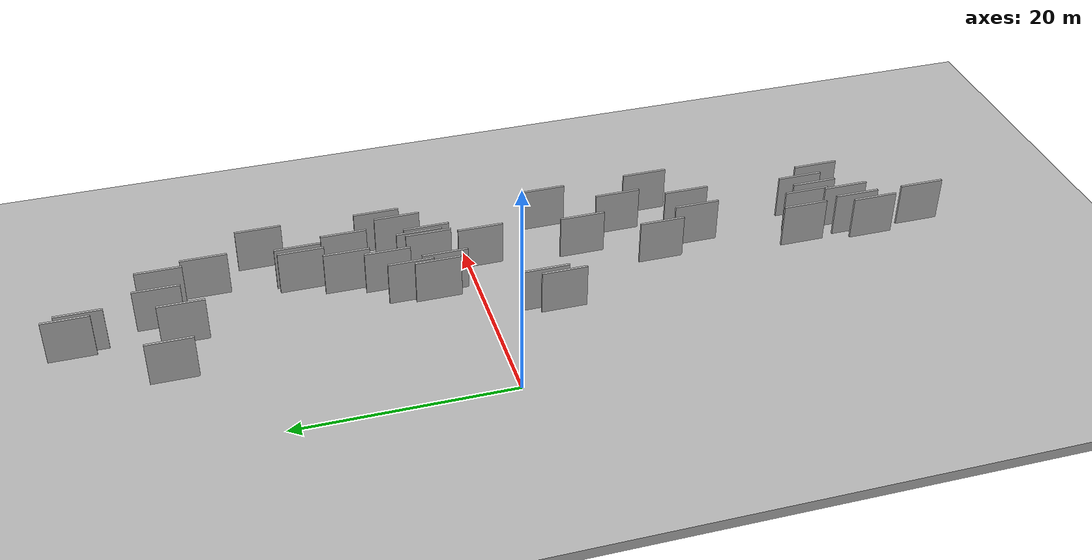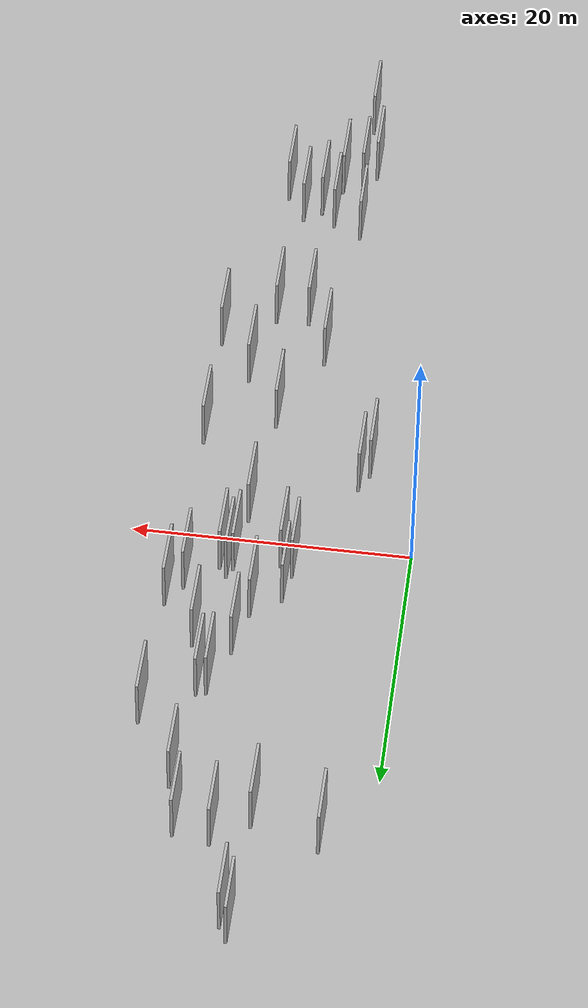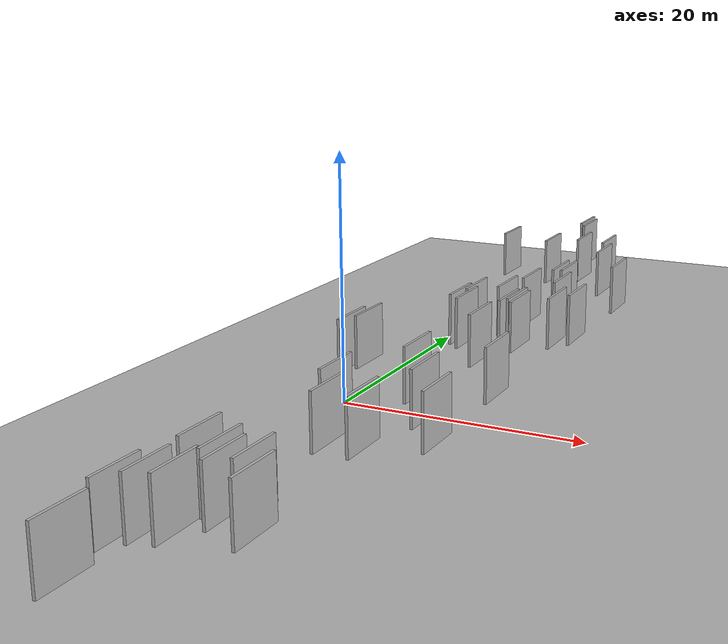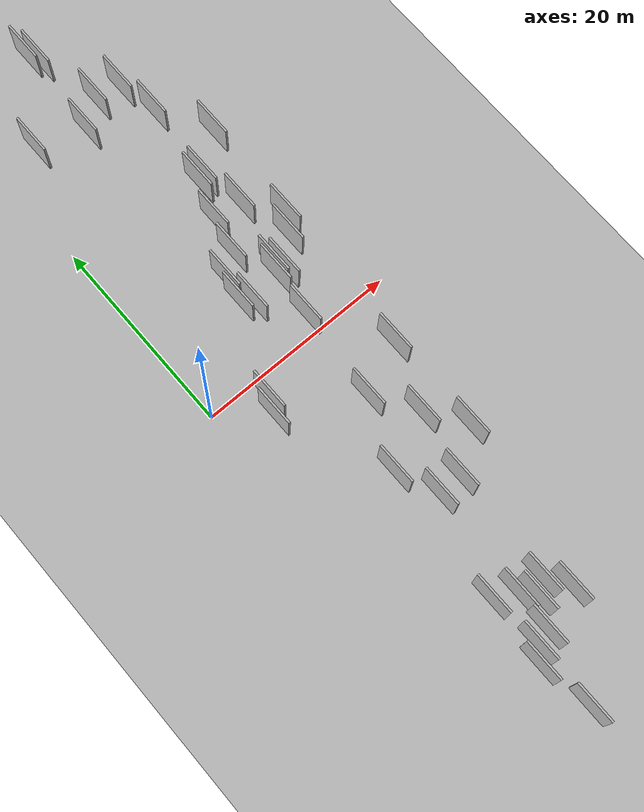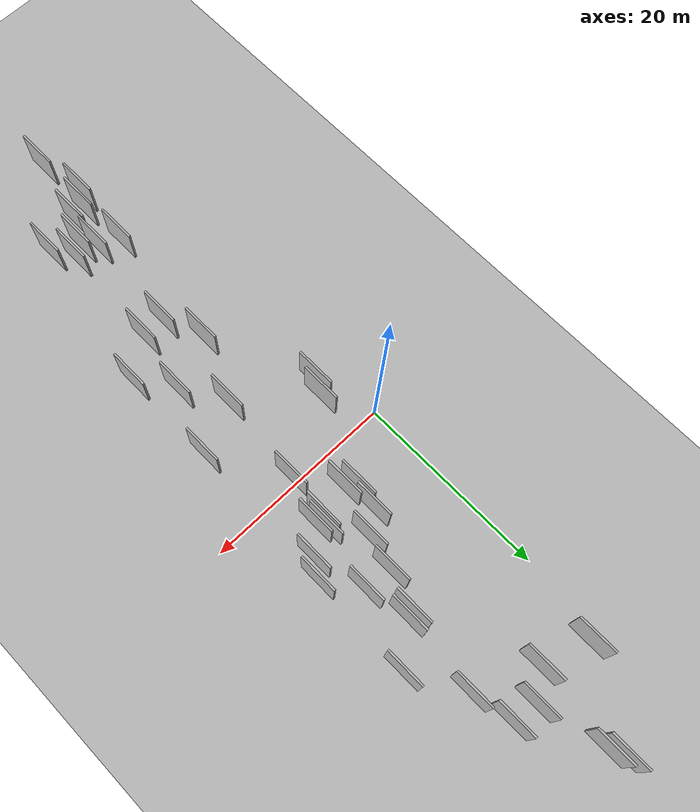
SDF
<?xml version="1.0" encoding="utf-8"?>

<sdf version="1.6">

   <world name="default">

      <gui fullscreen="0">

         <camera name="user_camera">

            <pose>-15 0 4.57585 0 0 0</pose>

            <view_controller>orbit</view_controller>

         </camera>

      </gui>

      <scene>

         <sky>

           <clouds>

             <speed>12</speed>

           </clouds>

         </sky>

         <ambient>0.4 0.4 0.4 1</ambient>

         <background>0.7 0.7 0.7 1</background>

         <shadows>1</shadows>

      </scene>

      <gravity>0 0 -9.8066</gravity>

      <magnetic_field>6e-06 2.3e-05 -4.2e-05</magnetic_field>

      <physics default="0" name="default_physics" type="ode">

         <ode>

            <solver>

               <type>quick</type>

               <iters>10</iters>

               <sor>1.0</sor>

               <use_dynamic_moi_rescaling>0</use_dynamic_moi_rescaling>

            </solver>

            <constraints>

               <cfm>0</cfm>

               <erp>0.2</erp>

               <contact_max_correcting_vel>100</contact_max_correcting_vel>

               <contact_surface_layer>0.001</contact_surface_layer>

            </constraints>

         </ode>

         <max_step_size>0.004</max_step_size>

         <real_time_factor>1</real_time_factor>

         <real_time_update_rate>250</real_time_update_rate>

      </physics>

      <light name="sun" type="directional">

         <cast_shadows>1</cast_shadows>

         <pose>0 0 10 0 0 0</pose>

         <diffuse>0.8 0.8 0.8 1</diffuse>

         <specular>0.2 0.2 0.2 1</specular>

         <attenuation>

            <range>1000</range>

            <constant>0.9</constant>

            <linear>0.01</linear>

            <quadratic>0.001</quadratic>

         </attenuation>

         <direction>-0.5 0.1 -0.9</direction>

      </light>

      <include>

         <name>ground_plane_1</name>

         <uri>model://HANNAS_ground_plane</uri>

         <pose>0 0 0  0 0 0</pose>

      </include>

      <include>

         <name>ground_plane_2</name>

         <uri>model://HANNAS_ground_plane</uri>

         <pose>100 0 0  0 0 0</pose>

      </include>

      <model name="HANNAS_wall_1">

         <static>1</static>

         <pose frame="">12.6795 27.9832 5.0 0.000000 0.000000 1.570796</pose>

         <link name="link">

            <pose frame="">0 0 2.00 0 0 0</pose>

            <collision name="collision">

               <geometry>

                  <box>

                     <size>4.00 0.2 4.00</size>

                  </box>

               </geometry>

               <max_contacts>10</max_contacts>

               <surface>

                  <contact>

                     <ode/>

                  </contact>

                  <bounce/>

                  <friction>

                     <torsional>

                        <ode/>

                     </torsional>

                     <ode/>

                  </friction>

               </surface>

            </collision>

            <visual name="visual">

               <cast_shadows>0</cast_shadows>

               <geometry>

                  <box>

                     <size>4.00 0.2 4.00</size>

                  </box>

               </geometry>

               <material>

                  <script>

                     <uri>model://HANNAS_wall/materials/scripts</uri>

                     <uri>model://HANNAS_wall/materials/textures</uri>

                     <name>vrc/HANNAS_wall</name>

                  </script>

               </material>

            </visual>

            <self_collide>0</self_collide>

            <enable_wind>0</enable_wind>

            <kinematic>0</kinematic>

         </link>

      </model>

      <model name="HANNAS_wall_2">

         <static>1</static>

         <pose frame="">10.1720 28.4027 5.0 0.000000 0.000000 1.570796</pose>

         <link name="link">

            <pose frame="">0 0 2.00 0 0 0</pose>

            <collision name="collision">

               <geometry>

                  <box>

                     <size>4.00 0.2 4.00</size>

                  </box>

               </geometry>

               <max_contacts>10</max_contacts>

               <surface>

                  <contact>

                     <ode/>

                  </contact>

                  <bounce/>

                  <friction>

                     <torsional>

                        <ode/>

                     </torsional>

                     <ode/>

                  </friction>

               </surface>

            </collision>

            <visual name="visual">

               <cast_shadows>0</cast_shadows>

               <geometry>

                  <box>

                     <size>4.00 0.2 4.00</size>

                  </box>

               </geometry>

               <material>

                  <script>

                     <uri>model://HANNAS_wall/materials/scripts</uri>

                     <uri>model://HANNAS_wall/materials/textures</uri>

                     <name>vrc/HANNAS_wall</name>

                  </script>

               </material>

            </visual>

            <self_collide>0</self_collide>

            <enable_wind>0</enable_wind>

            <kinematic>0</kinematic>

         </link>

      </model>

      <model name="HANNAS_wall_3">

         <static>1</static>

         <pose frame="">9.5162 -18.8121 5.0 0.000000 0.000000 1.570796</pose>

         <link name="link">

            <pose frame="">0 0 2.00 0 0 0</pose>

            <collision name="collision">

               <geometry>

                  <box>

                     <size>4.00 0.2 4.00</size>

                  </box>

               </geometry>

               <max_contacts>10</max_contacts>

               <surface>

                  <contact>

                     <ode/>

                  </contact>

                  <bounce/>

                  <friction>

                     <torsional>

                        <ode/>

                     </torsional>

                     <ode/>

                  </friction>

               </surface>

            </collision>

            <visual name="visual">

               <cast_shadows>0</cast_shadows>

               <geometry>

                  <box>

                     <size>4.00 0.2 4.00</size>

                  </box>

               </geometry>

               <material>

                  <script>

                     <uri>model://HANNAS_wall/materials/scripts</uri>

                     <uri>model://HANNAS_wall/materials/textures</uri>

                     <name>vrc/HANNAS_wall</name>

                  </script>

               </material>

            </visual>

            <self_collide>0</self_collide>

            <enable_wind>0</enable_wind>

            <kinematic>0</kinematic>

         </link>

      </model>

      <model name="HANNAS_wall_4">

         <static>1</static>

         <pose frame="">11.8128 5.0187 5.0 0.000000 0.000000 1.570796</pose>

         <link name="link">

            <pose frame="">0 0 2.00 0 0 0</pose>

            <collision name="collision">

               <geometry>

                  <box>

                     <size>4.00 0.2 4.00</size>

                  </box>

               </geometry>

               <max_contacts>10</max_contacts>

               <surface>

                  <contact>

                     <ode/>

                  </contact>

                  <bounce/>

                  <friction>

                     <torsional>

                        <ode/>

                     </torsional>

                     <ode/>

                  </friction>

               </surface>

            </collision>

            <visual name="visual">

               <cast_shadows>0</cast_shadows>

               <geometry>

                  <box>

                     <size>4.00 0.2 4.00</size>

                  </box>

               </geometry>

               <material>

                  <script>

                     <uri>model://HANNAS_wall/materials/scripts</uri>

                     <uri>model://HANNAS_wall/materials/textures</uri>

                     <name>vrc/HANNAS_wall</name>

                  </script>

               </material>

            </visual>

            <self_collide>0</self_collide>

            <enable_wind>0</enable_wind>

            <kinematic>0</kinematic>

         </link>

      </model>

      <model name="HANNAS_wall_5">

         <static>1</static>

         <pose frame="">10.5762 -8.5351 5.0 0.000000 0.000000 1.570796</pose>

         <link name="link">

            <pose frame="">0 0 2.00 0 0 0</pose>

            <collision name="collision">

               <geometry>

                  <box>

                     <size>4.00 0.2 4.00</size>

                  </box>

               </geometry>

               <max_contacts>10</max_contacts>

               <surface>

                  <contact>

                     <ode/>

                  </contact>

                  <bounce/>

                  <friction>

                     <torsional>

                        <ode/>

                     </torsional>

                     <ode/>

                  </friction>

               </surface>

            </collision>

            <visual name="visual">

               <cast_shadows>0</cast_shadows>

               <geometry>

                  <box>

                     <size>4.00 0.2 4.00</size>

                  </box>

               </geometry>

               <material>

                  <script>

                     <uri>model://HANNAS_wall/materials/scripts</uri>

                     <uri>model://HANNAS_wall/materials/textures</uri>

                     <name>vrc/HANNAS_wall</name>

                  </script>

               </material>

            </visual>

            <self_collide>0</self_collide>

            <enable_wind>0</enable_wind>

            <kinematic>0</kinematic>

         </link>

      </model>

      <model name="HANNAS_wall_6">

         <static>1</static>

         <pose frame="">8.8865 -29.0302 5.0 0.000000 0.000000 1.570796</pose>

         <link name="link">

            <pose frame="">0 0 2.00 0 0 0</pose>

            <collision name="collision">

               <geometry>

                  <box>

                     <size>4.00 0.2 4.00</size>

                  </box>

               </geometry>

               <max_contacts>10</max_contacts>

               <surface>

                  <contact>

                     <ode/>

                  </contact>

                  <bounce/>

                  <friction>

                     <torsional>

                        <ode/>

                     </torsional>

                     <ode/>

                  </friction>

               </surface>

            </collision>

            <visual name="visual">

               <cast_shadows>0</cast_shadows>

               <geometry>

                  <box>

                     <size>4.00 0.2 4.00</size>

                  </box>

               </geometry>

               <material>

                  <script>

                     <uri>model://HANNAS_wall/materials/scripts</uri>

                     <uri>model://HANNAS_wall/materials/textures</uri>

                     <name>vrc/HANNAS_wall</name>

                  </script>

               </material>

            </visual>

            <self_collide>0</self_collide>

            <enable_wind>0</enable_wind>

            <kinematic>0</kinematic>

         </link>

      </model>

      <model name="HANNAS_wall_7">

         <static>1</static>

         <pose frame="">7.0905 -39.4141 5.0 0.000000 0.000000 1.570796</pose>

         <link name="link">

            <pose frame="">0 0 2.00 0 0 0</pose>

            <collision name="collision">

               <geometry>

                  <box>

                     <size>4.00 0.2 4.00</size>

                  </box>

               </geometry>

               <max_contacts>10</max_contacts>

               <surface>

                  <contact>

                     <ode/>

                  </contact>

                  <bounce/>

                  <friction>

                     <torsional>

                        <ode/>

                     </torsional>

                     <ode/>

                  </friction>

               </surface>

            </collision>

            <visual name="visual">

               <cast_shadows>0</cast_shadows>

               <geometry>

                  <box>

                     <size>4.00 0.2 4.00</size>

                  </box>

               </geometry>

               <material>

                  <script>

                     <uri>model://HANNAS_wall/materials/scripts</uri>

                     <uri>model://HANNAS_wall/materials/textures</uri>

                     <name>vrc/HANNAS_wall</name>

                  </script>

               </material>

            </visual>

            <self_collide>0</self_collide>

            <enable_wind>0</enable_wind>

            <kinematic>0</kinematic>

         </link>

      </model>

      <model name="HANNAS_wall_8">

         <static>1</static>

         <pose frame="">16.0578 8.7407 5.0 0.000000 0.000000 1.570796</pose>

         <link name="link">

            <pose frame="">0 0 2.00 0 0 0</pose>

            <collision name="collision">

               <geometry>

                  <box>

                     <size>4.00 0.2 4.00</size>

                  </box>

               </geometry>

               <max_contacts>10</max_contacts>

               <surface>

                  <contact>

                     <ode/>

                  </contact>

                  <bounce/>

                  <friction>

                     <torsional>

                        <ode/>

                     </torsional>

                     <ode/>

                  </friction>

               </surface>

            </collision>

            <visual name="visual">

               <cast_shadows>0</cast_shadows>

               <geometry>

                  <box>

                     <size>4.00 0.2 4.00</size>

                  </box>

               </geometry>

               <material>

                  <script>

                     <uri>model://HANNAS_wall/materials/scripts</uri>

                     <uri>model://HANNAS_wall/materials/textures</uri>

                     <name>vrc/HANNAS_wall</name>

                  </script>

               </material>

            </visual>

            <self_collide>0</self_collide>

            <enable_wind>0</enable_wind>

            <kinematic>0</kinematic>

         </link>

      </model>

      <model name="HANNAS_wall_9">

         <static>1</static>

         <pose frame="">15.4858 -6.3340 5.0 0.000000 0.000000 1.570796</pose>

         <link name="link">

            <pose frame="">0 0 2.00 0 0 0</pose>

            <collision name="collision">

               <geometry>

                  <box>

                     <size>4.00 0.2 4.00</size>

                  </box>

               </geometry>

               <max_contacts>10</max_contacts>

               <surface>

                  <contact>

                     <ode/>

                  </contact>

                  <bounce/>

                  <friction>

                     <torsional>

                        <ode/>

                     </torsional>

                     <ode/>

                  </friction>

               </surface>

            </collision>

            <visual name="visual">

               <cast_shadows>0</cast_shadows>

               <geometry>

                  <box>

                     <size>4.00 0.2 4.00</size>

                  </box>

               </geometry>

               <material>

                  <script>

                     <uri>model://HANNAS_wall/materials/scripts</uri>

                     <uri>model://HANNAS_wall/materials/textures</uri>

                     <name>vrc/HANNAS_wall</name>

                  </script>

               </material>

            </visual>

            <self_collide>0</self_collide>

            <enable_wind>0</enable_wind>

            <kinematic>0</kinematic>

         </link>

      </model>

      <model name="HANNAS_wall_10">

         <static>1</static>

         <pose frame="">8.6025 4.3147 5.0 0.000000 0.000000 1.570796</pose>

         <link name="link">

            <pose frame="">0 0 2.00 0 0 0</pose>

            <collision name="collision">

               <geometry>

                  <box>

                     <size>4.00 0.2 4.00</size>

                  </box>

               </geometry>

               <max_contacts>10</max_contacts>

               <surface>

                  <contact>

                     <ode/>

                  </contact>

                  <bounce/>

                  <friction>

                     <torsional>

                        <ode/>

                     </torsional>

                     <ode/>

                  </friction>

               </surface>

            </collision>

            <visual name="visual">

               <cast_shadows>0</cast_shadows>

               <geometry>

                  <box>

                     <size>4.00 0.2 4.00</size>

                  </box>

               </geometry>

               <material>

                  <script>

                     <uri>model://HANNAS_wall/materials/scripts</uri>

                     <uri>model://HANNAS_wall/materials/textures</uri>

                     <name>vrc/HANNAS_wall</name>

                  </script>

               </material>

            </visual>

            <self_collide>0</self_collide>

            <enable_wind>0</enable_wind>

            <kinematic>0</kinematic>

         </link>

      </model>

      <model name="HANNAS_wall_11">

         <static>1</static>

         <pose frame="">11.3476 0.5023 5.0 0.000000 0.000000 1.570796</pose>

         <link name="link">

            <pose frame="">0 0 2.00 0 0 0</pose>

            <collision name="collision">

               <geometry>

                  <box>

                     <size>4.00 0.2 4.00</size>

                  </box>

               </geometry>

               <max_contacts>10</max_contacts>

               <surface>

                  <contact>

                     <ode/>

                  </contact>

                  <bounce/>

                  <friction>

                     <torsional>

                        <ode/>

                     </torsional>

                     <ode/>

                  </friction>

               </surface>

            </collision>

            <visual name="visual">

               <cast_shadows>0</cast_shadows>

               <geometry>

                  <box>

                     <size>4.00 0.2 4.00</size>

                  </box>

               </geometry>

               <material>

                  <script>

                     <uri>model://HANNAS_wall/materials/scripts</uri>

                     <uri>model://HANNAS_wall/materials/textures</uri>

                     <name>vrc/HANNAS_wall</name>

                  </script>

               </material>

            </visual>

            <self_collide>0</self_collide>

            <enable_wind>0</enable_wind>

            <kinematic>0</kinematic>

         </link>

      </model>

      <model name="HANNAS_wall_12">

         <static>1</static>

         <pose frame="">11.2209 -29.3743 5.0 0.000000 0.000000 1.570796</pose>

         <link name="link">

            <pose frame="">0 0 2.00 0 0 0</pose>

            <collision name="collision">

               <geometry>

                  <box>

                     <size>4.00 0.2 4.00</size>

                  </box>

               </geometry>

               <max_contacts>10</max_contacts>

               <surface>

                  <contact>

                     <ode/>

                  </contact>

                  <bounce/>

                  <friction>

                     <torsional>

                        <ode/>

                     </torsional>

                     <ode/>

                  </friction>

               </surface>

            </collision>

            <visual name="visual">

               <cast_shadows>0</cast_shadows>

               <geometry>

                  <box>

                     <size>4.00 0.2 4.00</size>

                  </box>

               </geometry>

               <material>

                  <script>

                     <uri>model://HANNAS_wall/materials/scripts</uri>

                     <uri>model://HANNAS_wall/materials/textures</uri>

                     <name>vrc/HANNAS_wall</name>

                  </script>

               </material>

            </visual>

            <self_collide>0</self_collide>

            <enable_wind>0</enable_wind>

            <kinematic>0</kinematic>

         </link>

      </model>

      <model name="HANNAS_wall_13">

         <static>1</static>

         <pose frame="">13.6624 12.0915 5.0 0.000000 0.000000 1.570796</pose>

         <link name="link">

            <pose frame="">0 0 2.00 0 0 0</pose>

            <collision name="collision">

               <geometry>

                  <box>

                     <size>4.00 0.2 4.00</size>

                  </box>

               </geometry>

               <max_contacts>10</max_contacts>

               <surface>

                  <contact>

                     <ode/>

                  </contact>

                  <bounce/>

                  <friction>

                     <torsional>

                        <ode/>

                     </torsional>

                     <ode/>

                  </friction>

               </surface>

            </collision>

            <visual name="visual">

               <cast_shadows>0</cast_shadows>

               <geometry>

                  <box>

                     <size>4.00 0.2 4.00</size>

                  </box>

               </geometry>

               <material>

                  <script>

                     <uri>model://HANNAS_wall/materials/scripts</uri>

                     <uri>model://HANNAS_wall/materials/textures</uri>

                     <name>vrc/HANNAS_wall</name>

                  </script>

               </material>

            </visual>

            <self_collide>0</self_collide>

            <enable_wind>0</enable_wind>

            <kinematic>0</kinematic>

         </link>

      </model>

      <model name="HANNAS_wall_14">

         <static>1</static>

         <pose frame="">7.9153 -14.9923 5.0 0.000000 0.000000 1.570796</pose>

         <link name="link">

            <pose frame="">0 0 2.00 0 0 0</pose>

            <collision name="collision">

               <geometry>

                  <box>

                     <size>4.00 0.2 4.00</size>

                  </box>

               </geometry>

               <max_contacts>10</max_contacts>

               <surface>

                  <contact>

                     <ode/>

                  </contact>

                  <bounce/>

                  <friction>

                     <torsional>

                        <ode/>

                     </torsional>

                     <ode/>

                  </friction>

               </surface>

            </collision>

            <visual name="visual">

               <cast_shadows>0</cast_shadows>

               <geometry>

                  <box>

                     <size>4.00 0.2 4.00</size>

                  </box>

               </geometry>

               <material>

                  <script>

                     <uri>model://HANNAS_wall/materials/scripts</uri>

                     <uri>model://HANNAS_wall/materials/textures</uri>

                     <name>vrc/HANNAS_wall</name>

                  </script>

               </material>

            </visual>

            <self_collide>0</self_collide>

            <enable_wind>0</enable_wind>

            <kinematic>0</kinematic>

         </link>

      </model>

      <model name="HANNAS_wall_15">

         <static>1</static>

         <pose frame="">6.8395 -28.0375 5.0 0.000000 0.000000 1.570796</pose>

         <link name="link">

            <pose frame="">0 0 2.00 0 0 0</pose>

            <collision name="collision">

               <geometry>

                  <box>

                     <size>4.00 0.2 4.00</size>

                  </box>

               </geometry>

               <max_contacts>10</max_contacts>

               <surface>

                  <contact>

                     <ode/>

                  </contact>

                  <bounce/>

                  <friction>

                     <torsional>

                        <ode/>

                     </torsional>

                     <ode/>

                  </friction>

               </surface>

            </collision>

            <visual name="visual">

               <cast_shadows>0</cast_shadows>

               <geometry>

                  <box>

                     <size>4.00 0.2 4.00</size>

                  </box>

               </geometry>

               <material>

                  <script>

                     <uri>model://HANNAS_wall/materials/scripts</uri>

                     <uri>model://HANNAS_wall/materials/textures</uri>

                     <name>vrc/HANNAS_wall</name>

                  </script>

               </material>

            </visual>

            <self_collide>0</self_collide>

            <enable_wind>0</enable_wind>

            <kinematic>0</kinematic>

         </link>

      </model>

      <model name="HANNAS_wall_16">

         <static>1</static>

         <pose frame="">7.6808 26.6427 5.0 0.000000 0.000000 1.570796</pose>

         <link name="link">

            <pose frame="">0 0 2.00 0 0 0</pose>

            <collision name="collision">

               <geometry>

                  <box>

                     <size>4.00 0.2 4.00</size>

                  </box>

               </geometry>

               <max_contacts>10</max_contacts>

               <surface>

                  <contact>

                     <ode/>

                  </contact>

                  <bounce/>

                  <friction>

                     <torsional>

                        <ode/>

                     </torsional>

                     <ode/>

                  </friction>

               </surface>

            </collision>

            <visual name="visual">

               <cast_shadows>0</cast_shadows>

               <geometry>

                  <box>

                     <size>4.00 0.2 4.00</size>

                  </box>

               </geometry>

               <material>

                  <script>

                     <uri>model://HANNAS_wall/materials/scripts</uri>

                     <uri>model://HANNAS_wall/materials/textures</uri>

                     <name>vrc/HANNAS_wall</name>

                  </script>

               </material>

            </visual>

            <self_collide>0</self_collide>

            <enable_wind>0</enable_wind>

            <kinematic>0</kinematic>

         </link>

      </model>

      <model name="HANNAS_wall_17">

         <static>1</static>

         <pose frame="">6.2701 -34.4607 5.0 0.000000 0.000000 1.570796</pose>

         <link name="link">

            <pose frame="">0 0 2.00 0 0 0</pose>

            <collision name="collision">

               <geometry>

                  <box>

                     <size>4.00 0.2 4.00</size>

                  </box>

               </geometry>

               <max_contacts>10</max_contacts>

               <surface>

                  <contact>

                     <ode/>

                  </contact>

                  <bounce/>

                  <friction>

                     <torsional>

                        <ode/>

                     </torsional>

                     <ode/>

                  </friction>

               </surface>

            </collision>

            <visual name="visual">

               <cast_shadows>0</cast_shadows>

               <geometry>

                  <box>

                     <size>4.00 0.2 4.00</size>

                  </box>

               </geometry>

               <material>

                  <script>

                     <uri>model://HANNAS_wall/materials/scripts</uri>

                     <uri>model://HANNAS_wall/materials/textures</uri>

                     <name>vrc/HANNAS_wall</name>

                  </script>

               </material>

            </visual>

            <self_collide>0</self_collide>

            <enable_wind>0</enable_wind>

            <kinematic>0</kinematic>

         </link>

      </model>

      <model name="HANNAS_wall_18">

         <static>1</static>

         <pose frame="">9.9262 -30.2279 5.0 0.000000 0.000000 1.570796</pose>

         <link name="link">

            <pose frame="">0 0 2.00 0 0 0</pose>

            <collision name="collision">

               <geometry>

                  <box>

                     <size>4.00 0.2 4.00</size>

                  </box>

               </geometry>

               <max_contacts>10</max_contacts>

               <surface>

                  <contact>

                     <ode/>

                  </contact>

                  <bounce/>

                  <friction>

                     <torsional>

                        <ode/>

                     </torsional>

                     <ode/>

                  </friction>

               </surface>

            </collision>

            <visual name="visual">

               <cast_shadows>0</cast_shadows>

               <geometry>

                  <box>

                     <size>4.00 0.2 4.00</size>

                  </box>

               </geometry>

               <material>

                  <script>

                     <uri>model://HANNAS_wall/materials/scripts</uri>

                     <uri>model://HANNAS_wall/materials/textures</uri>

                     <name>vrc/HANNAS_wall</name>

                  </script>

               </material>

            </visual>

            <self_collide>0</self_collide>

            <enable_wind>0</enable_wind>

            <kinematic>0</kinematic>

         </link>

      </model>

      <model name="HANNAS_wall_19">

         <static>1</static>

         <pose frame="">8.6367 -32.7029 5.0 0.000000 0.000000 1.570796</pose>

         <link name="link">

            <pose frame="">0 0 2.00 0 0 0</pose>

            <collision name="collision">

               <geometry>

                  <box>

                     <size>4.00 0.2 4.00</size>

                  </box>

               </geometry>

               <max_contacts>10</max_contacts>

               <surface>

                  <contact>

                     <ode/>

                  </contact>

                  <bounce/>

                  <friction>

                     <torsional>

                        <ode/>

                     </torsional>

                     <ode/>

                  </friction>

               </surface>

            </collision>

            <visual name="visual">

               <cast_shadows>0</cast_shadows>

               <geometry>

                  <box>

                     <size>4.00 0.2 4.00</size>

                  </box>

               </geometry>

               <material>

                  <script>

                     <uri>model://HANNAS_wall/materials/scripts</uri>

                     <uri>model://HANNAS_wall/materials/textures</uri>

                     <name>vrc/HANNAS_wall</name>

                  </script>

               </material>

            </visual>

            <self_collide>0</self_collide>

            <enable_wind>0</enable_wind>

            <kinematic>0</kinematic>

         </link>

      </model>

      <model name="HANNAS_wall_20">

         <static>1</static>

         <pose frame="">13.0877 -12.6126 5.0 0.000000 0.000000 1.570796</pose>

         <link name="link">

            <pose frame="">0 0 2.00 0 0 0</pose>

            <collision name="collision">

               <geometry>

                  <box>

                     <size>4.00 0.2 4.00</size>

                  </box>

               </geometry>

               <max_contacts>10</max_contacts>

               <surface>

                  <contact>

                     <ode/>

                  </contact>

                  <bounce/>

                  <friction>

                     <torsional>

                        <ode/>

                     </torsional>

                     <ode/>

                  </friction>

               </surface>

            </collision>

            <visual name="visual">

               <cast_shadows>0</cast_shadows>

               <geometry>

                  <box>

                     <size>4.00 0.2 4.00</size>

                  </box>

               </geometry>

               <material>

                  <script>

                     <uri>model://HANNAS_wall/materials/scripts</uri>

                     <uri>model://HANNAS_wall/materials/textures</uri>

                     <name>vrc/HANNAS_wall</name>

                  </script>

               </material>

            </visual>

            <self_collide>0</self_collide>

            <enable_wind>0</enable_wind>

            <kinematic>0</kinematic>

         </link>

      </model>

      <model name="HANNAS_wall_21">

         <static>1</static>

         <pose frame="">10.9283 12.3610 5.0 0.000000 0.000000 1.570796</pose>

         <link name="link">

            <pose frame="">0 0 2.00 0 0 0</pose>

            <collision name="collision">

               <geometry>

                  <box>

                     <size>4.00 0.2 4.00</size>

                  </box>

               </geometry>

               <max_contacts>10</max_contacts>

               <surface>

                  <contact>

                     <ode/>

                  </contact>

                  <bounce/>

                  <friction>

                     <torsional>

                        <ode/>

                     </torsional>

                     <ode/>

                  </friction>

               </surface>

            </collision>

            <visual name="visual">

               <cast_shadows>0</cast_shadows>

               <geometry>

                  <box>

                     <size>4.00 0.2 4.00</size>

                  </box>

               </geometry>

               <material>

                  <script>

                     <uri>model://HANNAS_wall/materials/scripts</uri>

                     <uri>model://HANNAS_wall/materials/textures</uri>

                     <name>vrc/HANNAS_wall</name>

                  </script>

               </material>

            </visual>

            <self_collide>0</self_collide>

            <enable_wind>0</enable_wind>

            <kinematic>0</kinematic>

         </link>

      </model>

      <model name="HANNAS_wall_22">

         <static>1</static>

         <pose frame="">12.1350 16.0685 5.0 0.000000 0.000000 1.570796</pose>

         <link name="link">

            <pose frame="">0 0 2.00 0 0 0</pose>

            <collision name="collision">

               <geometry>

                  <box>

                     <size>4.00 0.2 4.00</size>

                  </box>

               </geometry>

               <max_contacts>10</max_contacts>

               <surface>

                  <contact>

                     <ode/>

                  </contact>

                  <bounce/>

                  <friction>

                     <torsional>

                        <ode/>

                     </torsional>

                     <ode/>

                  </friction>

               </surface>

            </collision>

            <visual name="visual">

               <cast_shadows>0</cast_shadows>

               <geometry>

                  <box>

                     <size>4.00 0.2 4.00</size>

                  </box>

               </geometry>

               <material>

                  <script>

                     <uri>model://HANNAS_wall/materials/scripts</uri>

                     <uri>model://HANNAS_wall/materials/textures</uri>

                     <name>vrc/HANNAS_wall</name>

                  </script>

               </material>

            </visual>

            <self_collide>0</self_collide>

            <enable_wind>0</enable_wind>

            <kinematic>0</kinematic>

         </link>

      </model>

      <model name="HANNAS_wall_23">

         <static>1</static>

         <pose frame="">7.2155 -33.1629 5.0 0.000000 0.000000 1.570796</pose>

         <link name="link">

            <pose frame="">0 0 2.00 0 0 0</pose>

            <collision name="collision">

               <geometry>

                  <box>

                     <size>4.00 0.2 4.00</size>

                  </box>

               </geometry>

               <max_contacts>10</max_contacts>

               <surface>

                  <contact>

                     <ode/>

                  </contact>

                  <bounce/>

                  <friction>

                     <torsional>

                        <ode/>

                     </torsional>

                     <ode/>

                  </friction>

               </surface>

            </collision>

            <visual name="visual">

               <cast_shadows>0</cast_shadows>

               <geometry>

                  <box>

                     <size>4.00 0.2 4.00</size>

                  </box>

               </geometry>

               <material>

                  <script>

                     <uri>model://HANNAS_wall/materials/scripts</uri>

                     <uri>model://HANNAS_wall/materials/textures</uri>

                     <name>vrc/HANNAS_wall</name>

                  </script>

               </material>

            </visual>

            <self_collide>0</self_collide>

            <enable_wind>0</enable_wind>

            <kinematic>0</kinematic>

         </link>

      </model>

      <model name="HANNAS_wall_24">

         <static>1</static>

         <pose frame="">11.8681 -18.6852 5.0 0.000000 0.000000 1.570796</pose>

         <link name="link">

            <pose frame="">0 0 2.00 0 0 0</pose>

            <collision name="collision">

               <geometry>

                  <box>

                     <size>4.00 0.2 4.00</size>

                  </box>

               </geometry>

               <max_contacts>10</max_contacts>

               <surface>

                  <contact>

                     <ode/>

                  </contact>

                  <bounce/>

                  <friction>

                     <torsional>

                        <ode/>

                     </torsional>

                     <ode/>

                  </friction>

               </surface>

            </collision>

            <visual name="visual">

               <cast_shadows>0</cast_shadows>

               <geometry>

                  <box>

                     <size>4.00 0.2 4.00</size>

                  </box>

               </geometry>

               <material>

                  <script>

                     <uri>model://HANNAS_wall/materials/scripts</uri>

                     <uri>model://HANNAS_wall/materials/textures</uri>

                     <name>vrc/HANNAS_wall</name>

                  </script>

               </material>

            </visual>

            <self_collide>0</self_collide>

            <enable_wind>0</enable_wind>

            <kinematic>0</kinematic>

         </link>

      </model>

      <model name="HANNAS_wall_25">

         <static>1</static>

         <pose frame="">15.5195 -15.9785 5.0 0.000000 0.000000 1.570796</pose>

         <link name="link">

            <pose frame="">0 0 2.00 0 0 0</pose>

            <collision name="collision">

               <geometry>

                  <box>

                     <size>4.00 0.2 4.00</size>

                  </box>

               </geometry>

               <max_contacts>10</max_contacts>

               <surface>

                  <contact>

                     <ode/>

                  </contact>

                  <bounce/>

                  <friction>

                     <torsional>

                        <ode/>

                     </torsional>

                     <ode/>

                  </friction>

               </surface>

            </collision>

            <visual name="visual">

               <cast_shadows>0</cast_shadows>

               <geometry>

                  <box>

                     <size>4.00 0.2 4.00</size>

                  </box>

               </geometry>

               <material>

                  <script>

                     <uri>model://HANNAS_wall/materials/scripts</uri>

                     <uri>model://HANNAS_wall/materials/textures</uri>

                     <name>vrc/HANNAS_wall</name>

                  </script>

               </material>

            </visual>

            <self_collide>0</self_collide>

            <enable_wind>0</enable_wind>

            <kinematic>0</kinematic>

         </link>

      </model>

      <model name="HANNAS_wall_26">

         <static>1</static>

         <pose frame="">8.1082 7.3878 5.0 0.000000 0.000000 1.570796</pose>

         <link name="link">

            <pose frame="">0 0 2.00 0 0 0</pose>

            <collision name="collision">

               <geometry>

                  <box>

                     <size>4.00 0.2 4.00</size>

                  </box>

               </geometry>

               <max_contacts>10</max_contacts>

               <surface>

                  <contact>

                     <ode/>

                  </contact>

                  <bounce/>

                  <friction>

                     <torsional>

                        <ode/>

                     </torsional>

                     <ode/>

                  </friction>

               </surface>

            </collision>

            <visual name="visual">

               <cast_shadows>0</cast_shadows>

               <geometry>

                  <box>

                     <size>4.00 0.2 4.00</size>

                  </box>

               </geometry>

               <material>

                  <script>

                     <uri>model://HANNAS_wall/materials/scripts</uri>

                     <uri>model://HANNAS_wall/materials/textures</uri>

                     <name>vrc/HANNAS_wall</name>

                  </script>

               </material>

            </visual>

            <self_collide>0</self_collide>

            <enable_wind>0</enable_wind>

            <kinematic>0</kinematic>

         </link>

      </model>

      <model name="HANNAS_wall_27">

         <static>1</static>

         <pose frame="">16.2976 19.0983 5.0 0.000000 0.000000 1.570796</pose>

         <link name="link">

            <pose frame="">0 0 2.00 0 0 0</pose>

            <collision name="collision">

               <geometry>

                  <box>

                     <size>4.00 0.2 4.00</size>

                  </box>

               </geometry>

               <max_contacts>10</max_contacts>

               <surface>

                  <contact>

                     <ode/>

                  </contact>

                  <bounce/>

                  <friction>

                     <torsional>

                        <ode/>

                     </torsional>

                     <ode/>

                  </friction>

               </surface>

            </collision>

            <visual name="visual">

               <cast_shadows>0</cast_shadows>

               <geometry>

                  <box>

                     <size>4.00 0.2 4.00</size>

                  </box>

               </geometry>

               <material>

                  <script>

                     <uri>model://HANNAS_wall/materials/scripts</uri>

                     <uri>model://HANNAS_wall/materials/textures</uri>

                     <name>vrc/HANNAS_wall</name>

                  </script>

               </material>

            </visual>

            <self_collide>0</self_collide>

            <enable_wind>0</enable_wind>

            <kinematic>0</kinematic>

         </link>

      </model>

      <model name="HANNAS_wall_28">

         <static>1</static>

         <pose frame="">3.0625 28.0589 5.0 0.000000 0.000000 1.570796</pose>

         <link name="link">

            <pose frame="">0 0 2.00 0 0 0</pose>

            <collision name="collision">

               <geometry>

                  <box>

                     <size>4.00 0.2 4.00</size>

                  </box>

               </geometry>

               <max_contacts>10</max_contacts>

               <surface>

                  <contact>

                     <ode/>

                  </contact>

                  <bounce/>

                  <friction>

                     <torsional>

                        <ode/>

                     </torsional>

                     <ode/>

                  </friction>

               </surface>

            </collision>

            <visual name="visual">

               <cast_shadows>0</cast_shadows>

               <geometry>

                  <box>

                     <size>4.00 0.2 4.00</size>

                  </box>

               </geometry>

               <material>

                  <script>

                     <uri>model://HANNAS_wall/materials/scripts</uri>

                     <uri>model://HANNAS_wall/materials/textures</uri>

                     <name>vrc/HANNAS_wall</name>

                  </script>

               </material>

            </visual>

            <self_collide>0</self_collide>

            <enable_wind>0</enable_wind>

            <kinematic>0</kinematic>

         </link>

      </model>

      <model name="HANNAS_wall_29">

         <static>1</static>

         <pose frame="">12.7380 4.9946 5.0 0.000000 0.000000 1.570796</pose>

         <link name="link">

            <pose frame="">0 0 2.00 0 0 0</pose>

            <collision name="collision">

               <geometry>

                  <box>

                     <size>4.00 0.2 4.00</size>

                  </box>

               </geometry>

               <max_contacts>10</max_contacts>

               <surface>

                  <contact>

                     <ode/>

                  </contact>

                  <bounce/>

                  <friction>

                     <torsional>

                        <ode/>

                     </torsional>

                     <ode/>

                  </friction>

               </surface>

            </collision>

            <visual name="visual">

               <cast_shadows>0</cast_shadows>

               <geometry>

                  <box>

                     <size>4.00 0.2 4.00</size>

                  </box>

               </geometry>

               <material>

                  <script>

                     <uri>model://HANNAS_wall/materials/scripts</uri>

                     <uri>model://HANNAS_wall/materials/textures</uri>

                     <name>vrc/HANNAS_wall</name>

                  </script>

               </material>

            </visual>

            <self_collide>0</self_collide>

            <enable_wind>0</enable_wind>

            <kinematic>0</kinematic>

         </link>

      </model>

      <model name="HANNAS_wall_30">

         <static>1</static>

         <pose frame="">4.0825 -3.3359 5.0 0.000000 0.000000 1.570796</pose>

         <link name="link">

            <pose frame="">0 0 2.00 0 0 0</pose>

            <collision name="collision">

               <geometry>

                  <box>

                     <size>4.00 0.2 4.00</size>

                  </box>

               </geometry>

               <max_contacts>10</max_contacts>

               <surface>

                  <contact>

                     <ode/>

                  </contact>

                  <bounce/>

                  <friction>

                     <torsional>

                        <ode/>

                     </torsional>

                     <ode/>

                  </friction>

               </surface>

            </collision>

            <visual name="visual">

               <cast_shadows>0</cast_shadows>

               <geometry>

                  <box>

                     <size>4.00 0.2 4.00</size>

                  </box>

               </geometry>

               <material>

                  <script>

                     <uri>model://HANNAS_wall/materials/scripts</uri>

                     <uri>model://HANNAS_wall/materials/textures</uri>

                     <name>vrc/HANNAS_wall</name>

                  </script>

               </material>

            </visual>

            <self_collide>0</self_collide>

            <enable_wind>0</enable_wind>

            <kinematic>0</kinematic>

         </link>

      </model>

      <model name="HANNAS_wall_31">

         <static>1</static>

         <pose frame="">12.2007 5.7563 5.0 0.000000 0.000000 1.570796</pose>

         <link name="link">

            <pose frame="">0 0 2.00 0 0 0</pose>

            <collision name="collision">

               <geometry>

                  <box>

                     <size>4.00 0.2 4.00</size>

                  </box>

               </geometry>

               <max_contacts>10</max_contacts>

               <surface>

                  <contact>

                     <ode/>

                  </contact>

                  <bounce/>

                  <friction>

                     <torsional>

                        <ode/>

                     </torsional>

                     <ode/>

                  </friction>

               </surface>

            </collision>

            <visual name="visual">

               <cast_shadows>0</cast_shadows>

               <geometry>

                  <box>

                     <size>4.00 0.2 4.00</size>

                  </box>

               </geometry>

               <material>

                  <script>

                     <uri>model://HANNAS_wall/materials/scripts</uri>

                     <uri>model://HANNAS_wall/materials/textures</uri>

                     <name>vrc/HANNAS_wall</name>

                  </script>

               </material>

            </visual>

            <self_collide>0</self_collide>

            <enable_wind>0</enable_wind>

            <kinematic>0</kinematic>

         </link>

      </model>

      <model name="HANNAS_wall_32">

         <static>1</static>

         <pose frame="">8.6295 34.7761 5.0 0.000000 0.000000 1.570796</pose>

         <link name="link">

            <pose frame="">0 0 2.00 0 0 0</pose>

            <collision name="collision">

               <geometry>

                  <box>

                     <size>4.00 0.2 4.00</size>

                  </box>

               </geometry>

               <max_contacts>10</max_contacts>

               <surface>

                  <contact>

                     <ode/>

                  </contact>

                  <bounce/>

                  <friction>

                     <torsional>

                        <ode/>

                     </torsional>

                     <ode/>

                  </friction>

               </surface>

            </collision>

            <visual name="visual">

               <cast_shadows>0</cast_shadows>

               <geometry>

                  <box>

                     <size>4.00 0.2 4.00</size>

                  </box>

               </geometry>

               <material>

                  <script>

                     <uri>model://HANNAS_wall/materials/scripts</uri>

                     <uri>model://HANNAS_wall/materials/textures</uri>

                     <name>vrc/HANNAS_wall</name>

                  </script>

               </material>

            </visual>

            <self_collide>0</self_collide>

            <enable_wind>0</enable_wind>

            <kinematic>0</kinematic>

         </link>

      </model>

      <model name="HANNAS_wall_33">

         <static>1</static>

         <pose frame="">8.0475 35.8171 5.0 0.000000 0.000000 1.570796</pose>

         <link name="link">

            <pose frame="">0 0 2.00 0 0 0</pose>

            <collision name="collision">

               <geometry>

                  <box>

                     <size>4.00 0.2 4.00</size>

                  </box>

               </geometry>

               <max_contacts>10</max_contacts>

               <surface>

                  <contact>

                     <ode/>

                  </contact>

                  <bounce/>

                  <friction>

                     <torsional>

                        <ode/>

                     </torsional>

                     <ode/>

                  </friction>

               </surface>

            </collision>

            <visual name="visual">

               <cast_shadows>0</cast_shadows>

               <geometry>

                  <box>

                     <size>4.00 0.2 4.00</size>

                  </box>

               </geometry>

               <material>

                  <script>

                     <uri>model://HANNAS_wall/materials/scripts</uri>

                     <uri>model://HANNAS_wall/materials/textures</uri>

                     <name>vrc/HANNAS_wall</name>

                  </script>

               </material>

            </visual>

            <self_collide>0</self_collide>

            <enable_wind>0</enable_wind>

            <kinematic>0</kinematic>

         </link>

      </model>

      <model name="HANNAS_wall_34">

         <static>1</static>

         <pose frame="">3.4217 -4.7123 5.0 0.000000 0.000000 1.570796</pose>

         <link name="link">

            <pose frame="">0 0 2.00 0 0 0</pose>

            <collision name="collision">

               <geometry>

                  <box>

                     <size>4.00 0.2 4.00</size>

                  </box>

               </geometry>

               <max_contacts>10</max_contacts>

               <surface>

                  <contact>

                     <ode/>

                  </contact>

                  <bounce/>

                  <friction>

                     <torsional>

                        <ode/>

                     </torsional>

                     <ode/>

                  </friction>

               </surface>

            </collision>

            <visual name="visual">

               <cast_shadows>0</cast_shadows>

               <geometry>

                  <box>

                     <size>4.00 0.2 4.00</size>

                  </box>

               </geometry>

               <material>

                  <script>

                     <uri>model://HANNAS_wall/materials/scripts</uri>

                     <uri>model://HANNAS_wall/materials/textures</uri>

                     <name>vrc/HANNAS_wall</name>

                  </script>

               </material>

            </visual>

            <self_collide>0</self_collide>

            <enable_wind>0</enable_wind>

            <kinematic>0</kinematic>

         </link>

      </model>

      <model name="HANNAS_wall_35">

         <static>1</static>

         <pose frame="">12.8099 16.2394 5.0 0.000000 0.000000 1.570796</pose>

         <link name="link">

            <pose frame="">0 0 2.00 0 0 0</pose>

            <collision name="collision">

               <geometry>

                  <box>

                     <size>4.00 0.2 4.00</size>

                  </box>

               </geometry>

               <max_contacts>10</max_contacts>

               <surface>

                  <contact>

                     <ode/>

                  </contact>

                  <bounce/>

                  <friction>

                     <torsional>

                        <ode/>

                     </torsional>

                     <ode/>

                  </friction>

               </surface>

            </collision>

            <visual name="visual">

               <cast_shadows>0</cast_shadows>

               <geometry>

                  <box>

                     <size>4.00 0.2 4.00</size>

                  </box>

               </geometry>

               <material>

                  <script>

                     <uri>model://HANNAS_wall/materials/scripts</uri>

                     <uri>model://HANNAS_wall/materials/textures</uri>

                     <name>vrc/HANNAS_wall</name>

                  </script>

               </material>

            </visual>

            <self_collide>0</self_collide>

            <enable_wind>0</enable_wind>

            <kinematic>0</kinematic>

         </link>

      </model>

      <model name="HANNAS_wall_36">

         <static>1</static>

         <pose frame="">10.1423 8.9795 5.0 0.000000 0.000000 1.570796</pose>

         <link name="link">

            <pose frame="">0 0 2.00 0 0 0</pose>

            <collision name="collision">

               <geometry>

                  <box>

                     <size>4.00 0.2 4.00</size>

                  </box>

               </geometry>

               <max_contacts>10</max_contacts>

               <surface>

                  <contact>

                     <ode/>

                  </contact>

                  <bounce/>

                  <friction>

                     <torsional>

                        <ode/>

                     </torsional>

                     <ode/>

                  </friction>

               </surface>

            </collision>

            <visual name="visual">

               <cast_shadows>0</cast_shadows>

               <geometry>

                  <box>

                     <size>4.00 0.2 4.00</size>

                  </box>

               </geometry>

               <material>

                  <script>

                     <uri>model://HANNAS_wall/materials/scripts</uri>

                     <uri>model://HANNAS_wall/materials/textures</uri>

                     <name>vrc/HANNAS_wall</name>

                  </script>

               </material>

            </visual>

            <self_collide>0</self_collide>

            <enable_wind>0</enable_wind>

            <kinematic>0</kinematic>

         </link>

      </model>

      <model name="HANNAS_wall_37">

         <static>1</static>

         <pose frame="">13.4492 24.1148 5.0 0.000000 0.000000 1.570796</pose>

         <link name="link">

            <pose frame="">0 0 2.00 0 0 0</pose>

            <collision name="collision">

               <geometry>

                  <box>

                     <size>4.00 0.2 4.00</size>

                  </box>

               </geometry>

               <max_contacts>10</max_contacts>

               <surface>

                  <contact>

                     <ode/>

                  </contact>

                  <bounce/>

                  <friction>

                     <torsional>

                        <ode/>

                     </torsional>

                     <ode/>

                  </friction>

               </surface>

            </collision>

            <visual name="visual">

               <cast_shadows>0</cast_shadows>

               <geometry>

                  <box>

                     <size>4.00 0.2 4.00</size>

                  </box>

               </geometry>

               <material>

                  <script>

                     <uri>model://HANNAS_wall/materials/scripts</uri>

                     <uri>model://HANNAS_wall/materials/textures</uri>

                     <name>vrc/HANNAS_wall</name>

                  </script>

               </material>

            </visual>

            <self_collide>0</self_collide>

            <enable_wind>0</enable_wind>

            <kinematic>0</kinematic>

         </link>

      </model>

      <model name="HANNAS_wall_38">

         <static>1</static>

         <pose frame="">7.7141 5.1274 5.0 0.000000 0.000000 1.570796</pose>

         <link name="link">

            <pose frame="">0 0 2.00 0 0 0</pose>

            <collision name="collision">

               <geometry>

                  <box>

                     <size>4.00 0.2 4.00</size>

                  </box>

               </geometry>

               <max_contacts>10</max_contacts>

               <surface>

                  <contact>

                     <ode/>

                  </contact>

                  <bounce/>

                  <friction>

                     <torsional>

                        <ode/>

                     </torsional>

                     <ode/>

                  </friction>

               </surface>

            </collision>

            <visual name="visual">

               <cast_shadows>0</cast_shadows>

               <geometry>

                  <box>

                     <size>4.00 0.2 4.00</size>

                  </box>

               </geometry>

               <material>

                  <script>

                     <uri>model://HANNAS_wall/materials/scripts</uri>

                     <uri>model://HANNAS_wall/materials/textures</uri>

                     <name>vrc/HANNAS_wall</name>

                  </script>

               </material>

            </visual>

            <self_collide>0</self_collide>

            <enable_wind>0</enable_wind>

            <kinematic>0</kinematic>

         </link>

      </model>

      <model name="HANNAS_wall_39">

         <static>1</static>

         <pose frame="">14.9737 7.1327 5.0 0.000000 0.000000 1.570796</pose>

         <link name="link">

            <pose frame="">0 0 2.00 0 0 0</pose>

            <collision name="collision">

               <geometry>

                  <box>

                     <size>4.00 0.2 4.00</size>

                  </box>

               </geometry>

               <max_contacts>10</max_contacts>

               <surface>

                  <contact>

                     <ode/>

                  </contact>

                  <bounce/>

                  <friction>

                     <torsional>

                        <ode/>

                     </torsional>

                     <ode/>

                  </friction>

               </surface>

            </collision>

            <visual name="visual">

               <cast_shadows>0</cast_shadows>

               <geometry>

                  <box>

                     <size>4.00 0.2 4.00</size>

                  </box>

               </geometry>

               <material>

                  <script>

                     <uri>model://HANNAS_wall/materials/scripts</uri>

                     <uri>model://HANNAS_wall/materials/textures</uri>

                     <name>vrc/HANNAS_wall</name>

                  </script>

               </material>

            </visual>

            <self_collide>0</self_collide>

            <enable_wind>0</enable_wind>

            <kinematic>0</kinematic>

         </link>

      </model>

      <model name="HANNAS_wall_40">

         <static>1</static>

         <pose frame="">12.5732 -31.4929 5.0 0.000000 0.000000 1.570796</pose>

         <link name="link">

            <pose frame="">0 0 2.00 0 0 0</pose>

            <collision name="collision">

               <geometry>

                  <box>

                     <size>4.00 0.2 4.00</size>

                  </box>

               </geometry>

               <max_contacts>10</max_contacts>

               <surface>

                  <contact>

                     <ode/>

                  </contact>

                  <bounce/>

                  <friction>

                     <torsional>

                        <ode/>

                     </torsional>

                     <ode/>

                  </friction>

               </surface>

            </collision>

            <visual name="visual">

               <cast_shadows>0</cast_shadows>

               <geometry>

                  <box>

                     <size>4.00 0.2 4.00</size>

                  </box>

               </geometry>

               <material>

                  <script>

                     <uri>model://HANNAS_wall/materials/scripts</uri>

                     <uri>model://HANNAS_wall/materials/textures</uri>

                     <name>vrc/HANNAS_wall</name>

                  </script>

               </material>

            </visual>

            <self_collide>0</self_collide>

            <enable_wind>0</enable_wind>

            <kinematic>0</kinematic>

         </link>

      </model>

   </world>

</sdf>
